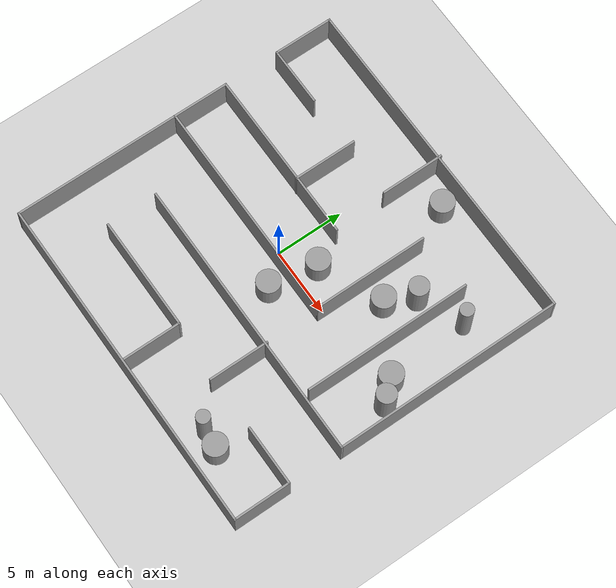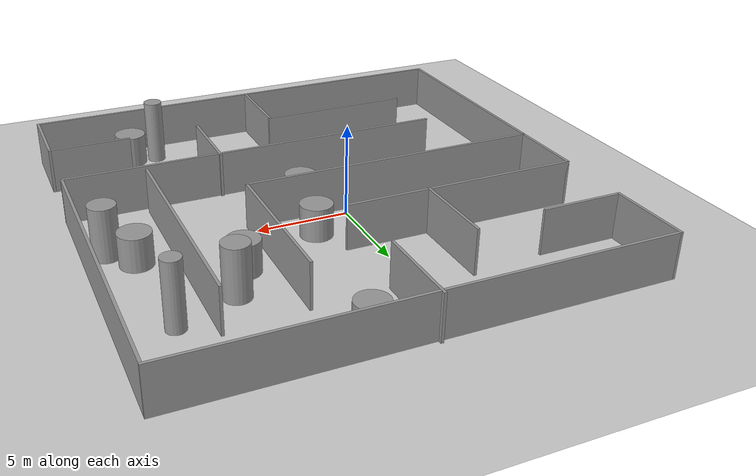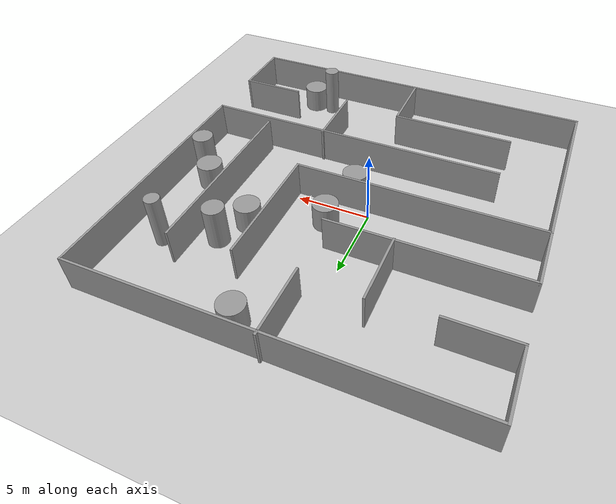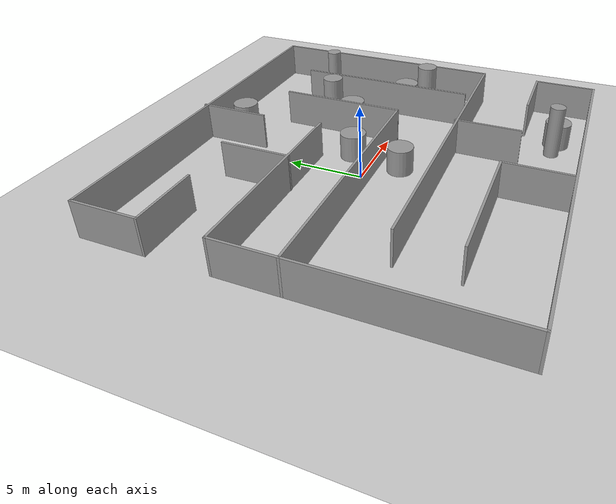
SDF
<sdf version="1.7">
 <world name="default">
  <model name="ground_plane">
   <static>1</static>
   <link name="link">
    <collision name="collision">
     <geometry><plane><normal>0 0 1</normal><size>100 100</size></plane></geometry>
     <surface>
      <contact><collide_bitmask>65535</collide_bitmask></contact>
      <friction><ode><mu>100</mu><mu2>50</mu2></ode></friction>
     </surface>
    </collision>
    <visual name="visual">
     <cast_shadows>0</cast_shadows>
     <geometry><plane><normal>0 0 1</normal><size>100 100</size></plane></geometry>
     <material>
      <script><uri>file://media/materials/scripts/gazebo.material</uri><name>Gazebo/Grey</name></script>
     </material>
    </visual>
   </link>
  </model>
  <model name="maze4">
   <pose>1.24134 -0.33676 0 0 -0 0</pose>
   <link name="Wall_186">
    <collision name="Wall_186_Collision">
     <geometry><box><size>4.5 0.15 2.5</size></box></geometry>
     <pose>0 0 1.25 0 -0 0</pose>
    </collision>
    <visual name="Wall_186_Visual">
     <pose>0 0 1.25 0 -0 0</pose>
     <geometry><box><size>4.5 0.15 2.5</size></box></geometry>
     <material>
      <script><uri>file://media/materials/scripts/gazebo.material</uri><name>Gazebo/Grey</name></script>
      <ambient>1 1 1 1</ambient>
     </material>
     <meta><layer>0</layer></meta>
    </visual>
    <pose>-10.3717 8.05219 0 0 -0 3.14159</pose>
   </link>
   <link name="Wall_187">
    <collision name="Wall_187_Collision">
     <geometry><box><size>4.5 0.15 2.5</size></box></geometry>
     <pose>0 0 1.25 0 -0 0</pose>
    </collision>
    <visual name="Wall_187_Visual">
     <pose>0 0 1.25 0 -0 0</pose>
     <geometry><box><size>4.5 0.15 2.5</size></box></geometry>
     <material>
      <script><uri>file://media/materials/scripts/gazebo.material</uri><name>Gazebo/Grey</name></script>
      <ambient>1 1 1 1</ambient>
     </material>
     <meta><layer>0</layer></meta>
    </visual>
    <pose>-12.5467 10.2272 0 0 -0 1.5708</pose>
   </link>
   <link name="Wall_188">
    <collision name="Wall_188_Collision">
     <geometry><box><size>25.25 0.15 2.5</size></box></geometry>
     <pose>0 0 1.25 0 -0 0</pose>
    </collision>
    <visual name="Wall_188_Visual">
     <pose>0 0 1.25 0 -0 0</pose>
     <geometry><box><size>25.25 0.15 2.5</size></box></geometry>
     <material>
      <script><uri>file://media/materials/scripts/gazebo.material</uri><name>Gazebo/Grey</name></script>
      <ambient>1 1 1 1</ambient>
     </material>
     <meta><layer>0</layer></meta>
    </visual>
    <pose>0.003348 12.4022 0 0 -0 0</pose>
   </link>
   <link name="Wall_189">
    <collision name="Wall_189_Collision">
     <geometry><box><size>17 0.15 2.5</size></box></geometry>
     <pose>0 0 1.25 0 -0 0</pose>
    </collision>
    <visual name="Wall_189_Visual">
     <pose>0 0 1.25 0 -0 0</pose>
     <geometry><box><size>17 0.15 2.5</size></box></geometry>
     <material>
      <script><uri>file://media/materials/scripts/gazebo.material</uri><name>Gazebo/Grey</name></script>
      <ambient>1 1 1 1</ambient>
     </material>
     <meta><layer>0</layer></meta>
    </visual>
    <pose>12.5533 3.97719 0 0 -0 -1.5708</pose>
   </link>
   <link name="Wall_190">
    <collision name="Wall_190_Collision">
     <geometry><box><size>21.25 0.15 2.5</size></box></geometry>
     <pose>0 0 1.25 0 -0 0</pose>
    </collision>
    <visual name="Wall_190_Visual">
     <pose>0 0 1.25 0 -0 0</pose>
     <geometry><box><size>21.25 0.15 2.5</size></box></geometry>
     <material>
      <script><uri>file://media/materials/scripts/gazebo.material</uri><name>Gazebo/Grey</name></script>
      <ambient>1 1 1 1</ambient>
     </material>
     <meta><layer>0</layer></meta>
    </visual>
    <pose>2.00335 -4.44781 0 0 -0 3.14159</pose>
   </link>
   <link name="Wall_192">
    <collision name="Wall_192_Collision">
     <geometry><box><size>4.75 0.15 2.5</size></box></geometry>
     <pose>0 0 1.25 0 -0 0</pose>
    </collision>
    <visual name="Wall_192_Visual">
     <pose>0 0 1.25 0 -0 0</pose>
     <geometry><box><size>4.75 0.15 2.5</size></box></geometry>
     <material>
      <script><uri>file://media/materials/scripts/gazebo.material</uri><name>Gazebo/Grey</name></script>
      <ambient>1 1 1 1</ambient>
     </material>
     <meta><layer>0</layer></meta>
    </visual>
    <pose>-0.035179 10.2818 0 0 -0 1.5708</pose>
   </link>
   <link name="Wall_194">
    <collision name="Wall_194_Collision">
     <geometry><box><size>12.5 0.15 2.5</size></box></geometry>
     <pose>0 0 1.25 0 -0 0</pose>
    </collision>
    <visual name="Wall_194_Visual">
     <pose>0 0 1.25 0 -0 0</pose>
     <geometry><box><size>12.5 0.15 2.5</size></box></geometry>
     <material>
      <script><uri>file://media/materials/scripts/gazebo.material</uri><name>Gazebo/Grey</name></script>
      <ambient>1 1 1 1</ambient>
     </material>
     <meta><layer>0</layer></meta>
    </visual>
    <pose>8.26701 2.26641 0 0 -0 1.5708</pose>
   </link>
   <link name="Wall_196">
    <collision name="Wall_196_Collision">
     <geometry><box><size>4.5 0.15 2.5</size></box></geometry>
     <pose>0 0 1.25 0 -0 0</pose>
    </collision>
    <visual name="Wall_196_Visual">
     <pose>0 0 1.25 0 -0 0</pose>
     <geometry><box><size>4.5 0.15 2.5</size></box></geometry>
     <material>
      <script><uri>file://media/materials/scripts/gazebo.material</uri><name>Gazebo/Grey</name></script>
      <ambient>1 1 1 1</ambient>
     </material>
     <meta><layer>0</layer></meta>
    </visual>
    <pose>4.11592 -6.50574 0 0 -0 -1.5708</pose>
   </link>
   <link name="Wall_198">
    <collision name="Wall_198_Collision">
     <geometry><box><size>4.5 0.15 2.5</size></box></geometry>
     <pose>0 0 1.25 0 -0 0</pose>
    </collision>
    <visual name="Wall_198_Visual">
     <pose>0 0 1.25 0 -0 0</pose>
     <geometry><box><size>4.5 0.15 2.5</size></box></geometry>
     <material>
      <script><uri>file://media/materials/scripts/gazebo.material</uri><name>Gazebo/Grey</name></script>
      <ambient>1 1 1 1</ambient>
     </material>
     <meta><layer>0</layer></meta>
    </visual>
    <pose>10.3717 -8.48183 0 0 -0 0</pose>
   </link>
   <link name="Wall_199">
    <collision name="Wall_199_Collision">
     <geometry><box><size>4.25 0.15 2.5</size></box></geometry>
     <pose>0 0 1.25 0 -0 0</pose>
    </collision>
    <visual name="Wall_199_Visual">
     <pose>0 0 1.25 0 -0 0</pose>
     <geometry><box><size>4.25 0.15 2.5</size></box></geometry>
     <material>
      <script><uri>file://media/materials/scripts/gazebo.material</uri><name>Gazebo/Grey</name></script>
      <ambient>1 1 1 1</ambient>
     </material>
     <meta><layer>0</layer></meta>
    </visual>
    <pose>12.5467 -10.5318 0 0 -0 -1.5708</pose>
   </link>
   <link name="Wall_200">
    <collision name="Wall_200_Collision">
     <geometry><box><size>25.25 0.15 2.5</size></box></geometry>
     <pose>0 0 1.25 0 -0 0</pose>
    </collision>
    <visual name="Wall_200_Visual">
     <pose>0 0 1.25 0 -0 0</pose>
     <geometry><box><size>25.25 0.15 2.5</size></box></geometry>
     <material>
      <script><uri>file://media/materials/scripts/gazebo.material</uri><name>Gazebo/Grey</name></script>
      <ambient>1 1 1 1</ambient>
     </material>
     <meta><layer>0</layer></meta>
    </visual>
    <pose>-0.003348 -12.5818 0 0 -0 3.14159</pose>
   </link>
   <link name="Wall_201">
    <collision name="Wall_201_Collision">
     <geometry><box><size>12.5 0.15 2.5</size></box></geometry>
     <pose>0 0 1.25 0 -0 0</pose>
    </collision>
    <visual name="Wall_201_Visual">
     <pose>0 0 1.25 0 -0 0</pose>
     <geometry><box><size>12.5 0.15 2.5</size></box></geometry>
     <material>
      <script><uri>file://media/materials/scripts/gazebo.material</uri><name>Gazebo/Grey</name></script>
      <ambient>1 1 1 1</ambient>
     </material>
     <meta><layer>0</layer></meta>
    </visual>
    <pose>-12.5533 -6.40683 0 0 -0 1.5708</pose>
   </link>
   <link name="Wall_202">
    <collision name="Wall_202_Collision">
     <geometry><box><size>16.75 0.15 2.5</size></box></geometry>
     <pose>0 0 1.25 0 -0 0</pose>
    </collision>
    <visual name="Wall_202_Visual">
     <pose>0 0 1.25 0 -0 0</pose>
     <geometry><box><size>16.75 0.15 2.5</size></box></geometry>
     <material>
      <script><uri>file://media/materials/scripts/gazebo.material</uri><name>Gazebo/Grey</name></script>
      <ambient>1 1 1 1</ambient>
     </material>
     <meta><layer>0</layer></meta>
    </visual>
    <pose>-4.25335 -0.23183 0 0 -0 0</pose>
   </link>
   <link name="Wall_203">
    <collision name="Wall_203_Collision">
     <geometry><box><size>8.5 0.15 2.5</size></box></geometry>
     <pose>0 0 1.25 0 -0 0</pose>
    </collision>
    <visual name="Wall_203_Visual">
     <pose>0 0 1.25 0 -0 0</pose>
     <geometry><box><size>8.5 0.15 2.5</size></box></geometry>
     <material>
      <script><uri>file://media/materials/scripts/gazebo.material</uri><name>Gazebo/Grey</name></script>
      <ambient>1 1 1 1</ambient>
     </material>
     <meta><layer>0</layer></meta>
    </visual>
    <pose>4.04665 3.94317 0 0 -0 1.5708</pose>
   </link>
   <link name="Wall_205">
    <collision name="Wall_205_Collision">
     <geometry><box><size>4.25 0.15 2.5</size></box></geometry>
     <pose>0 0 1.25 0 -0 0</pose>
    </collision>
    <visual name="Wall_205_Visual">
     <pose>0 0 1.25 0 -0 0</pose>
     <geometry><box><size>4.25 0.15 2.5</size></box></geometry>
     <material>
      <script><uri>file://media/materials/scripts/gazebo.material</uri><name>Gazebo/Grey</name></script>
      <ambient>1 1 1 1</ambient>
     </material>
     <meta><layer>0</layer></meta>
    </visual>
    <pose>-12.5533 1.81817 0 0 -0 1.5708</pose>
   </link>
   <link name="Wall_206">
    <collision name="Wall_206_Collision">
     <geometry><box><size>13 0.15 2.5</size></box></geometry>
     <pose>0 0 1.25 0 -0 0</pose>
    </collision>
    <visual name="Wall_206_Visual">
     <pose>0 0 1.25 0 -0 0</pose>
     <geometry><box><size>13 0.15 2.5</size></box></geometry>
     <material>
      <script><uri>file://media/materials/scripts/gazebo.material</uri><name>Gazebo/Grey</name></script>
      <ambient>1 1 1 1</ambient>
     </material>
     <meta><layer>0</layer></meta>
    </visual>
    <pose>-6.12835 3.86817 0 0 -0 0</pose>
   </link>
   <link name="Wall_208">
    <collision name="Wall_208_Collision">
     <geometry><box><size>4.75 0.15 2.5</size></box></geometry>
     <pose>0 0 1.25 0 -0 0</pose>
    </collision>
    <visual name="Wall_208_Visual">
     <pose>0 0 1.25 0 -0 0</pose>
     <geometry><box><size>4.75 0.15 2.5</size></box></geometry>
     <material>
      <script><uri>file://media/materials/scripts/gazebo.material</uri><name>Gazebo/Grey</name></script>
      <ambient>1 1 1 1</ambient>
     </material>
     <meta><layer>0</layer></meta>
    </visual>
    <pose>-4.18627 6.13074 0 0 -0 1.5708</pose>
   </link>
   <link name="Wall_210">
    <collision name="Wall_210_Collision">
     <geometry><box><size>4.5 0.15 2.5</size></box></geometry>
     <pose>0 0 1.25 0 -0 0</pose>
    </collision>
    <visual name="Wall_210_Visual">
     <pose>0 0 1.25 0 -0 0</pose>
     <geometry><box><size>4.5 0.15 2.5</size></box></geometry>
     <material>
      <script><uri>file://media/materials/scripts/gazebo.material</uri><name>Gazebo/Grey</name></script>
      <ambient>1 1 1 1</ambient>
     </material>
     <meta><layer>0</layer></meta>
    </visual>
    <pose>-0.175894 -10.3876 0 0 -0 1.5708</pose>
   </link>
   <link name="Wall_211">
    <collision name="Wall_211_Collision">
     <geometry><box><size>8.5 0.15 2.5</size></box></geometry>
     <pose>0 0 1.25 0 -0 0</pose>
    </collision>
    <visual name="Wall_211_Visual">
     <pose>0 0 1.25 0 -0 0</pose>
     <geometry><box><size>8.5 0.15 2.5</size></box></geometry>
     <material>
      <script><uri>file://media/materials/scripts/gazebo.material</uri><name>Gazebo/Grey</name></script>
      <ambient>1 1 1 1</ambient>
     </material>
     <meta><layer>0</layer></meta>
    </visual>
    <pose>-4.35089 -8.21257 0 0 -0 3.14159</pose>
   </link>
   <static>1</static>
  </model>
  <model name="long_cylinder">
   <link name="link_5">
    <inertial>
     <mass>3.60259</mass>
     <inertia><ixx>4.12154</ixx><ixy>0</ixy><ixz>0</ixz><iyy>4.12154</iyy><iyz>0</iyz><izz>0.450323</izz></inertia>
    </inertial>
    <pose>0 -2e-06 0 0 -0 0</pose>
    <visual name="visual">
     <geometry><cylinder><radius>0.5</radius><length>3.60259</length></cylinder></geometry>
     <material>
      <lighting>1</lighting>
      <script><uri>file://media/materials/scripts/gazebo.material</uri><name>Gazebo/Grey</name></script>
      <shader type="pixel"/>
      <emissive>0 0 0 1</emissive>
     </material>
    </visual>
    <collision name="collision">
     <geometry><cylinder><radius>0.5</radius><length>3.60258</length></cylinder></geometry>
     <surface>
      <friction>
       <ode><mu>1</mu><mu2>1</mu2><fdir1>0 0 0</fdir1><slip1>0</slip1><slip2>0</slip2></ode>
       <torsional>
        <coefficient>1</coefficient>
        <patch_radius>0</patch_radius>
        <surface_radius>0</surface_radius>
        <use_patch_radius>1</use_patch_radius>
        <ode><slip>0</slip></ode>
       </torsional>
      </friction>
      <bounce><restitution_coefficient>0</restitution_coefficient><threshold>1e+06</threshold></bounce>
      <contact>
       <collide_without_contact>0</collide_without_contact>
       <collide_without_contact_bitmask>1</collide_without_contact_bitmask>
       <collide_bitmask>1</collide_bitmask>
       <ode>
        <soft_cfm>0</soft_cfm>
        <soft_erp>0.2</soft_erp>
        <kp>1e+13</kp>
        <kd>1</kd>
        <max_vel>0.01</max_vel>
        <min_depth>0</min_depth>
       </ode>
       <bullet>
        <split_impulse>1</split_impulse>
        <split_impulse_penetration_threshold>-0.01</split_impulse_penetration_threshold>
        <soft_cfm>0</soft_cfm>
        <soft_erp>0.2</soft_erp>
        <kp>1e+13</kp>
        <kd>1</kd>
       </bullet>
      </contact>
     </surface>
    </collision>
   </link>
   <static>0</static>
   <pose>7.43658 -10.968 1.80128 0 -0 0</pose>
  </model>
  <model name="big_cylinder_1">
   <link name="link_6">
    <inertial>
     <mass>5.40188</mass>
     <inertia><ixx>2.45932</ixx><ixy>0</ixy><ixz>0</ixz><iyy>2.45932</iyy><iyz>0</iyz><izz>2.03968</izz></inertia>
    </inertial>
    <pose>3e-06 3e-06 0 0 -0 0</pose>
    <visual name="visual">
     <geometry><cylinder><radius>0.869008</radius><length>1.78822</length></cylinder></geometry>
     <material>
      <lighting>1</lighting>
      <script><uri>file://media/materials/scripts/gazebo.material</uri><name>Gazebo/Grey</name></script>
      <shader type="pixel"/>
     </material>
    </visual>
    <collision name="collision">
     <geometry><cylinder><radius>0.869008</radius><length>1.78822</length></cylinder></geometry>
     <surface>
      <friction>
       <ode><mu>1</mu><mu2>1</mu2><fdir1>0 0 0</fdir1><slip1>0</slip1><slip2>0</slip2></ode>
       <torsional>
        <coefficient>1</coefficient>
        <patch_radius>0</patch_radius>
        <surface_radius>0</surface_radius>
        <use_patch_radius>1</use_patch_radius>
        <ode><slip>0</slip></ode>
       </torsional>
      </friction>
      <bounce><restitution_coefficient>0</restitution_coefficient><threshold>1e+06</threshold></bounce>
      <contact>
       <collide_without_contact>0</collide_without_contact>
       <collide_without_contact_bitmask>1</collide_without_contact_bitmask>
       <collide_bitmask>1</collide_bitmask>
       <ode>
        <soft_cfm>0</soft_cfm>
        <soft_erp>0.2</soft_erp>
        <kp>1e+13</kp>
        <kd>1</kd>
        <max_vel>0.01</max_vel>
        <min_depth>0</min_depth>
       </ode>
       <bullet>
        <split_impulse>1</split_impulse>
        <split_impulse_penetration_threshold>-0.01</split_impulse_penetration_threshold>
        <soft_cfm>0</soft_cfm>
        <soft_erp>0.2</soft_erp>
        <kp>1e+13</kp>
        <kd>1</kd>
       </bullet>
      </contact>
     </surface>
    </collision>
   </link>
   <static>0</static>
   <pose>6.91443 3.50522 0.89411 0 -0 0</pose>
  </model>
  <model name="long_cylinder_2">
   <link name="link_5">
    <inertial>
     <mass>3.60259</mass>
     <inertia><ixx>4.12154</ixx><ixy>0</ixy><ixz>0</ixz><iyy>4.12154</iyy><iyz>0</iyz><izz>0.450323</izz></inertia>
    </inertial>
    <pose>0 -2e-06 0 0 -0 0</pose>
    <visual name="visual">
     <geometry><cylinder><radius>0.5</radius><length>3.60259</length></cylinder></geometry>
     <material>
      <lighting>1</lighting>
      <script><uri>file://media/materials/scripts/gazebo.material</uri><name>Gazebo/Grey</name></script>
      <shader type="pixel"/>
      <emissive>0 0 0 1</emissive>
     </material>
    </visual>
    <collision name="collision">
     <geometry><cylinder><radius>0.5</radius><length>3.60258</length></cylinder></geometry>
     <surface>
      <friction>
       <ode><mu>1</mu><mu2>1</mu2><fdir1>0 0 0</fdir1><slip1>0</slip1><slip2>0</slip2></ode>
       <torsional>
        <coefficient>1</coefficient>
        <patch_radius>0</patch_radius>
        <surface_radius>0</surface_radius>
        <use_patch_radius>1</use_patch_radius>
        <ode><slip>0</slip></ode>
       </torsional>
      </friction>
      <bounce><restitution_coefficient>0</restitution_coefficient><threshold>1e+06</threshold></bounce>
      <contact>
       <collide_without_contact>0</collide_without_contact>
       <collide_without_contact_bitmask>1</collide_without_contact_bitmask>
       <collide_bitmask>1</collide_bitmask>
       <ode>
        <soft_cfm>0</soft_cfm>
        <soft_erp>0.2</soft_erp>
        <kp>1e+13</kp>
        <kd>1</kd>
        <max_vel>0.01</max_vel>
        <min_depth>0</min_depth>
       </ode>
       <bullet>
        <split_impulse>1</split_impulse>
        <split_impulse_penetration_threshold>-0.01</split_impulse_penetration_threshold>
        <soft_cfm>0</soft_cfm>
        <soft_erp>0.2</soft_erp>
        <kp>1e+13</kp>
        <kd>1</kd>
       </bullet>
      </contact>
     </surface>
    </collision>
   </link>
   <static>0</static>
   <pose>11.1922 6.88494 1.80128 0 -0 0</pose>
  </model>
  <model name="big_cylinder_2">
   <link name="link_6">
    <inertial>
     <mass>5.40188</mass>
     <inertia><ixx>2.45932</ixx><ixy>0</ixy><ixz>0</ixz><iyy>2.45932</iyy><iyz>0</iyz><izz>2.03968</izz></inertia>
    </inertial>
    <pose>3e-06 3e-06 0 0 -0 0</pose>
    <visual name="visual">
     <geometry><cylinder><radius>0.869008</radius><length>1.78822</length></cylinder></geometry>
     <material>
      <lighting>1</lighting>
      <script><uri>file://media/materials/scripts/gazebo.material</uri><name>Gazebo/Grey</name></script>
      <shader type="pixel"/>
     </material>
    </visual>
    <collision name="collision">
     <geometry><cylinder><radius>0.869008</radius><length>1.78822</length></cylinder></geometry>
     <surface>
      <friction>
       <ode><mu>1</mu><mu2>1</mu2><fdir1>0 0 0</fdir1><slip1>0</slip1><slip2>0</slip2></ode>
       <torsional>
        <coefficient>1</coefficient>
        <patch_radius>0</patch_radius>
        <surface_radius>0</surface_radius>
        <use_patch_radius>1</use_patch_radius>
        <ode><slip>0</slip></ode>
       </torsional>
      </friction>
      <bounce><restitution_coefficient>0</restitution_coefficient><threshold>1e+06</threshold></bounce>
      <contact>
       <collide_without_contact>0</collide_without_contact>
       <collide_without_contact_bitmask>1</collide_without_contact_bitmask>
       <collide_bitmask>1</collide_bitmask>
       <ode>
        <soft_cfm>0</soft_cfm>
        <soft_erp>0.2</soft_erp>
        <kp>1e+13</kp>
        <kd>1</kd>
        <max_vel>0.01</max_vel>
        <min_depth>0</min_depth>
       </ode>
       <bullet>
        <split_impulse>1</split_impulse>
        <split_impulse_penetration_threshold>-0.01</split_impulse_penetration_threshold>
        <soft_cfm>0</soft_cfm>
        <soft_erp>0.2</soft_erp>
        <kp>1e+13</kp>
        <kd>1</kd>
       </bullet>
      </contact>
     </surface>
    </collision>
   </link>
   <static>0</static>
   <pose>11.4512 0.825512 0.89411 0 -0 0</pose>
  </model>
  <model name="big_cylinder_5">
   <link name="link_6">
    <inertial>
     <mass>5.40188</mass>
     <inertia><ixx>2.45932</ixx><ixy>0</ixy><ixz>0</ixz><iyy>2.45932</iyy><iyz>0</iyz><izz>2.03968</izz></inertia>
    </inertial>
    <pose>3e-06 3e-06 0 0 -0 0</pose>
    <visual name="visual">
     <geometry><cylinder><radius>0.869008</radius><length>1.78822</length></cylinder></geometry>
     <material>
      <lighting>1</lighting>
      <script><uri>file://media/materials/scripts/gazebo.material</uri><name>Gazebo/Grey</name></script>
      <shader type="pixel"/>
     </material>
    </visual>
    <collision name="collision">
     <geometry><cylinder><radius>0.869008</radius><length>1.78822</length></cylinder></geometry>
     <surface>
      <friction>
       <ode><mu>1</mu><mu2>1</mu2><fdir1>0 0 0</fdir1><slip1>0</slip1><slip2>0</slip2></ode>
       <torsional>
        <coefficient>1</coefficient>
        <patch_radius>0</patch_radius>
        <surface_radius>0</surface_radius>
        <use_patch_radius>1</use_patch_radius>
        <ode><slip>0</slip></ode>
       </torsional>
      </friction>
      <bounce><restitution_coefficient>0</restitution_coefficient><threshold>1e+06</threshold></bounce>
      <contact>
       <collide_without_contact>0</collide_without_contact>
       <collide_without_contact_bitmask>1</collide_without_contact_bitmask>
       <collide_bitmask>1</collide_bitmask>
       <ode>
        <soft_cfm>0</soft_cfm>
        <soft_erp>0.2</soft_erp>
        <kp>1e+13</kp>
        <kd>1</kd>
        <max_vel>0.01</max_vel>
        <min_depth>0</min_depth>
       </ode>
       <bullet>
        <split_impulse>1</split_impulse>
        <split_impulse_penetration_threshold>-0.01</split_impulse_penetration_threshold>
        <soft_cfm>0</soft_cfm>
        <soft_erp>0.2</soft_erp>
        <kp>1e+13</kp>
        <kd>1</kd>
       </bullet>
      </contact>
     </surface>
    </collision>
   </link>
   <static>0</static>
   <pose>8.89016 -11.0951 0.89411 0 -0 0</pose>
  </model>
  <model name="big_cylinder_7">
   <link name="link_6">
    <inertial>
     <mass>5.40188</mass>
     <inertia><ixx>2.45932</ixx><ixy>0</ixy><ixz>0</ixz><iyy>2.45932</iyy><iyz>0</iyz><izz>2.03968</izz></inertia>
    </inertial>
    <pose>3e-06 3e-06 0 0 -0 0</pose>
    <visual name="visual">
     <geometry><cylinder><radius>0.869008</radius><length>1.78822</length></cylinder></geometry>
     <material>
      <lighting>1</lighting>
      <script><uri>file://media/materials/scripts/gazebo.material</uri><name>Gazebo/Grey</name></script>
      <shader type="pixel"/>
     </material>
    </visual>
    <collision name="collision">
     <geometry><cylinder><radius>0.869008</radius><length>1.78822</length></cylinder></geometry>
     <surface>
      <friction>
       <ode><mu>1</mu><mu2>1</mu2><fdir1>0 0 0</fdir1><slip1>0</slip1><slip2>0</slip2></ode>
       <torsional>
        <coefficient>1</coefficient>
        <patch_radius>0</patch_radius>
        <surface_radius>0</surface_radius>
        <use_patch_radius>1</use_patch_radius>
        <ode><slip>0</slip></ode>
       </torsional>
      </friction>
      <bounce><restitution_coefficient>0</restitution_coefficient><threshold>1e+06</threshold></bounce>
      <contact>
       <collide_without_contact>0</collide_without_contact>
       <collide_without_contact_bitmask>1</collide_without_contact_bitmask>
       <collide_bitmask>1</collide_bitmask>
       <ode>
        <soft_cfm>0</soft_cfm>
        <soft_erp>0.2</soft_erp>
        <kp>1e+13</kp>
        <kd>1</kd>
        <max_vel>0.01</max_vel>
        <min_depth>0</min_depth>
       </ode>
       <bullet>
        <split_impulse>1</split_impulse>
        <split_impulse_penetration_threshold>-0.01</split_impulse_penetration_threshold>
        <soft_cfm>0</soft_cfm>
        <soft_erp>0.2</soft_erp>
        <kp>1e+13</kp>
        <kd>1</kd>
       </bullet>
      </contact>
     </surface>
    </collision>
   </link>
   <static>0</static>
   <pose>1.75495 -2.04325 0.89411 0 -0 0</pose>
  </model>
  <model name="medium_cylinder_0">
   <link name="link_7">
    <inertial>
     <mass>5.8515</mass>
     <inertia><ixx>4.76268</ixx><ixy>0</ixy><ixz>0</ixz><iyy>4.76268</iyy><iyz>0</iyz><izz>1.49119</izz></inertia>
    </inertial>
    <pose>-1e-06 1e-06 0 0 -0 0</pose>
    <visual name="visual">
     <geometry><cylinder><radius>0.713918</radius><length>2.8702</length></cylinder></geometry>
     <material>
      <lighting>1</lighting>
      <script><uri>file://media/materials/scripts/gazebo.material</uri><name>Gazebo/Grey</name></script>
      <shader type="pixel"/>
     </material>
    </visual>
    <collision name="collision">
     <geometry><cylinder><radius>0.713918</radius><length>2.8702</length></cylinder></geometry>
     <surface>
      <friction>
       <ode><mu>1</mu><mu2>1</mu2><fdir1>0 0 0</fdir1><slip1>0</slip1><slip2>0</slip2></ode>
       <torsional>
        <coefficient>1</coefficient>
        <patch_radius>0</patch_radius>
        <surface_radius>0</surface_radius>
        <use_patch_radius>1</use_patch_radius>
        <ode><slip>0</slip></ode>
       </torsional>
      </friction>
      <bounce><restitution_coefficient>0</restitution_coefficient><threshold>1e+06</threshold></bounce>
      <contact>
       <collide_without_contact>0</collide_without_contact>
       <collide_without_contact_bitmask>1</collide_without_contact_bitmask>
       <collide_bitmask>1</collide_bitmask>
       <ode>
        <soft_cfm>0</soft_cfm>
        <soft_erp>0.2</soft_erp>
        <kp>1e+13</kp>
        <kd>1</kd>
        <max_vel>0.01</max_vel>
        <min_depth>0</min_depth>
       </ode>
       <bullet>
        <split_impulse>1</split_impulse>
        <split_impulse_penetration_threshold>-0.01</split_impulse_penetration_threshold>
        <soft_cfm>0</soft_cfm>
        <soft_erp>0.2</soft_erp>
        <kp>1e+13</kp>
        <kd>1</kd>
       </bullet>
      </contact>
     </surface>
    </collision>
   </link>
   <static>0</static>
   <pose>7.94199 5.52471 1.4351 0 -0 0</pose>
  </model>
  <model name="medium_cylinder_1">
   <link name="link_7">
    <inertial>
     <mass>5.8515</mass>
     <inertia><ixx>4.76268</ixx><ixy>0</ixy><ixz>0</ixz><iyy>4.76268</iyy><iyz>0</iyz><izz>1.49119</izz></inertia>
    </inertial>
    <pose>-1e-06 1e-06 0 0 -0 0</pose>
    <visual name="visual">
     <geometry><cylinder><radius>0.713918</radius><length>2.8702</length></cylinder></geometry>
     <material>
      <lighting>1</lighting>
      <script><uri>file://media/materials/scripts/gazebo.material</uri><name>Gazebo/Grey</name></script>
      <shader type="pixel"/>
     </material>
    </visual>
    <collision name="collision">
     <geometry><cylinder><radius>0.713918</radius><length>2.8702</length></cylinder></geometry>
     <surface>
      <friction>
       <ode><mu>1</mu><mu2>1</mu2><fdir1>0 0 0</fdir1><slip1>0</slip1><slip2>0</slip2></ode>
       <torsional>
        <coefficient>1</coefficient>
        <patch_radius>0</patch_radius>
        <surface_radius>0</surface_radius>
        <use_patch_radius>1</use_patch_radius>
        <ode><slip>0</slip></ode>
       </torsional>
      </friction>
      <bounce><restitution_coefficient>0</restitution_coefficient><threshold>1e+06</threshold></bounce>
      <contact>
       <collide_without_contact>0</collide_without_contact>
       <collide_without_contact_bitmask>1</collide_without_contact_bitmask>
       <collide_bitmask>1</collide_bitmask>
       <ode>
        <soft_cfm>0</soft_cfm>
        <soft_erp>0.2</soft_erp>
        <kp>1e+13</kp>
        <kd>1</kd>
        <max_vel>0.01</max_vel>
        <min_depth>0</min_depth>
       </ode>
       <bullet>
        <split_impulse>1</split_impulse>
        <split_impulse_penetration_threshold>-0.01</split_impulse_penetration_threshold>
        <soft_cfm>0</soft_cfm>
        <soft_erp>0.2</soft_erp>
        <kp>1e+13</kp>
        <kd>1</kd>
       </bullet>
      </contact>
     </surface>
    </collision>
   </link>
   <static>0</static>
   <pose>12.6331 -0.462761 1.43509 0 -0 0</pose>
  </model>
  <model name="big_cylinder_9">
   <link name="link_6">
    <inertial>
     <mass>5.40188</mass>
     <inertia><ixx>2.45932</ixx><ixy>0</ixy><ixz>0</ixz><iyy>2.45932</iyy><iyz>0</iyz><izz>2.03968</izz></inertia>
    </inertial>
    <pose>3e-06 3e-06 0 0 -0 0</pose>
    <visual name="visual">
     <geometry><cylinder><radius>0.869008</radius><length>1.78822</length></cylinder></geometry>
     <material>
      <lighting>1</lighting>
      <script><uri>file://media/materials/scripts/gazebo.material</uri><name>Gazebo/Grey</name></script>
      <shader type="pixel"/>
     </material>
    </visual>
    <collision name="collision">
     <geometry><cylinder><radius>0.869008</radius><length>1.78822</length></cylinder></geometry>
     <surface>
      <friction>
       <ode><mu>1</mu><mu2>1</mu2><fdir1>0 0 0</fdir1><slip1>0</slip1><slip2>0</slip2></ode>
       <torsional>
        <coefficient>1</coefficient>
        <patch_radius>0</patch_radius>
        <surface_radius>0</surface_radius>
        <use_patch_radius>1</use_patch_radius>
        <ode><slip>0</slip></ode>
       </torsional>
      </friction>
      <bounce><restitution_coefficient>0</restitution_coefficient><threshold>1e+06</threshold></bounce>
      <contact>
       <collide_without_contact>0</collide_without_contact>
       <collide_without_contact_bitmask>1</collide_without_contact_bitmask>
       <collide_bitmask>1</collide_bitmask>
       <ode>
        <soft_cfm>0</soft_cfm>
        <soft_erp>0.2</soft_erp>
        <kp>1e+13</kp>
        <kd>1</kd>
        <max_vel>0.01</max_vel>
        <min_depth>0</min_depth>
       </ode>
       <bullet>
        <split_impulse>1</split_impulse>
        <split_impulse_penetration_threshold>-0.01</split_impulse_penetration_threshold>
        <soft_cfm>0</soft_cfm>
        <soft_erp>0.2</soft_erp>
        <kp>1e+13</kp>
        <kd>1</kd>
       </bullet>
      </contact>
     </surface>
    </collision>
   </link>
   <static>0</static>
   <pose>2.35112 1.51224 0.89411 0 -0 0</pose>
  </model>
  <model name="big_cylinder_10">
   <link name="link_6">
    <inertial>
     <mass>5.40188</mass>
     <inertia><ixx>2.45932</ixx><ixy>0</ixy><ixz>0</ixz><iyy>2.45932</iyy><iyz>0</iyz><izz>2.03968</izz></inertia>
    </inertial>
    <pose>3e-06 3e-06 0 0 -0 0</pose>
    <visual name="visual">
     <geometry><cylinder><radius>0.869008</radius><length>1.78822</length></cylinder></geometry>
     <material>
      <lighting>1</lighting>
      <script><uri>file://media/materials/scripts/gazebo.material</uri><name>Gazebo/Grey</name></script>
      <shader type="pixel"/>
     </material>
    </visual>
    <collision name="collision">
     <geometry><cylinder><radius>0.869008</radius><length>1.78822</length></cylinder></geometry>
     <surface>
      <friction>
       <ode><mu>1</mu><mu2>1</mu2><fdir1>0 0 0</fdir1><slip1>0</slip1><slip2>0</slip2></ode>
       <torsional>
        <coefficient>1</coefficient>
        <patch_radius>0</patch_radius>
        <surface_radius>0</surface_radius>
        <use_patch_radius>1</use_patch_radius>
        <ode><slip>0</slip></ode>
       </torsional>
      </friction>
      <bounce><restitution_coefficient>0</restitution_coefficient><threshold>1e+06</threshold></bounce>
      <contact>
       <collide_without_contact>0</collide_without_contact>
       <collide_without_contact_bitmask>1</collide_without_contact_bitmask>
       <collide_bitmask>1</collide_bitmask>
       <ode>
        <soft_cfm>0</soft_cfm>
        <soft_erp>0.2</soft_erp>
        <kp>1e+13</kp>
        <kd>1</kd>
        <max_vel>0.01</max_vel>
        <min_depth>0</min_depth>
       </ode>
       <bullet>
        <split_impulse>1</split_impulse>
        <split_impulse_penetration_threshold>-0.01</split_impulse_penetration_threshold>
        <soft_cfm>0</soft_cfm>
        <soft_erp>0.2</soft_erp>
        <kp>1e+13</kp>
        <kd>1</kd>
       </bullet>
      </contact>
     </surface>
    </collision>
   </link>
   <static>0</static>
   <pose>3.69168 10.6459 0.89411 0 -0 0</pose>
  </model>
 </world>
</sdf>
